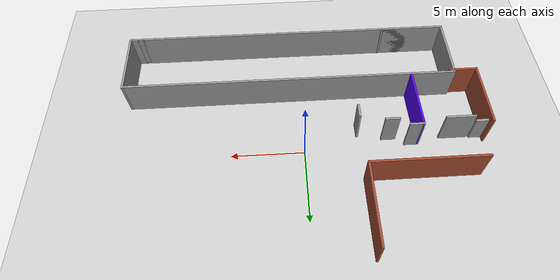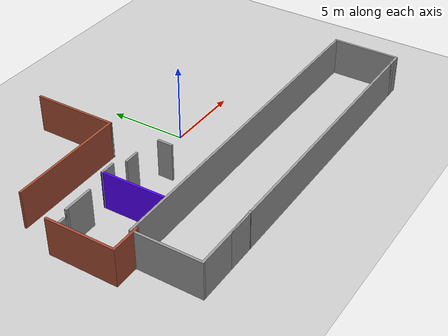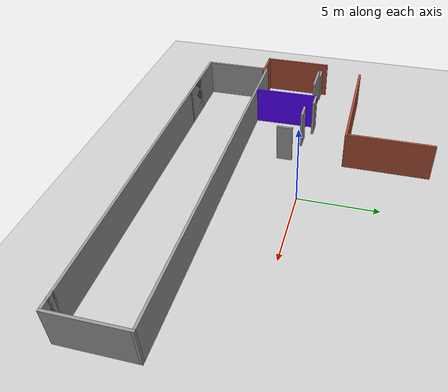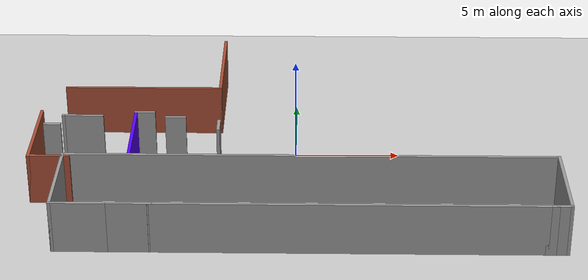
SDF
<sdf version="1.6">
 <world name="default">
  <model name="ground_plane">
   <static>1</static>
   <link name="link">
    <collision name="collision">
     <geometry><plane><normal>0 0 1</normal><size>100 100</size></plane></geometry>
     <surface>
      <contact><collide_bitmask>65535</collide_bitmask></contact>
      <friction><ode><mu>100</mu><mu2>50</mu2></ode></friction>
     </surface>
    </collision>
    <visual name="visual">
     <cast_shadows>0</cast_shadows>
     <geometry><plane><normal>0 0 1</normal><size>100 100</size></plane></geometry>
     <material>
      <script><uri>file://media/materials/scripts/gazebo.material</uri><name>Gazebo/Grey</name></script>
     </material>
    </visual>
   </link>
  </model>
  <model name="homeOffice">
   <link name="Door_3">
    <pose>-13.5001 -2.06196 0 0 -0 0</pose>
    <visual name="Door_3_Visual">
     <pose>0 0 1 0 -0 0</pose>
     <geometry><box><size>0.9 0.17 2</size></box></geometry>
     <material>
      <script><uri>file://media/materials/scripts/gazebo.material</uri><name>Gazebo/Grey</name></script>
      <shader type="pixel"/>
      <ambient>0.3 0.3 0.3 1</ambient>
      <diffuse>0.7 0.7 0.7 1</diffuse>
      <specular>0.01 0.01 0.01 1</specular>
      <emissive>0 0 0 1</emissive>
     </material>
    </visual>
    <collision name="Door_3_Collision">
     <pose>0 0 1 0 -0 0</pose>
     <geometry><box><size>0.9 0.17 2</size></box></geometry>
     <surface>
      <friction>
       <ode><mu>1</mu><mu2>1</mu2><fdir1>0 0 0</fdir1><slip1>0</slip1><slip2>0</slip2></ode>
       <torsional>
        <coefficient>1</coefficient>
        <patch_radius>0</patch_radius>
        <surface_radius>0</surface_radius>
        <use_patch_radius>1</use_patch_radius>
        <ode><slip>0</slip></ode>
       </torsional>
      </friction>
      <bounce><restitution_coefficient>0</restitution_coefficient><threshold>1e+06</threshold></bounce>
      <contact>
       <collide_without_contact>0</collide_without_contact>
       <collide_without_contact_bitmask>1</collide_without_contact_bitmask>
       <collide_bitmask>1</collide_bitmask>
       <ode>
        <soft_cfm>0</soft_cfm>
        <soft_erp>0.2</soft_erp>
        <kp>1e+13</kp>
        <kd>1</kd>
        <max_vel>0.01</max_vel>
        <min_depth>0</min_depth>
       </ode>
       <bullet>
        <split_impulse>1</split_impulse>
        <split_impulse_penetration_threshold>-0.01</split_impulse_penetration_threshold>
        <soft_cfm>0</soft_cfm>
        <soft_erp>0.2</soft_erp>
        <kp>1e+13</kp>
        <kd>1</kd>
       </bullet>
      </contact>
     </surface>
    </collision>
   </link>
   <link name="Wall_11">
    <pose>-5.36279 -2.9996 0 0 0 -1.5708</pose>
    <visual name="Wall_11_Visual">
     <pose>0 0 1.25 0 -0 0</pose>
     <geometry><box><size>1 0.15 2.5</size></box></geometry>
     <material>
      <script><uri>file://media/materials/scripts/gazebo.material</uri><name>Gazebo/Grey</name></script>
      <ambient>1 1 1 1</ambient>
      <shader type="pixel"/>
      <diffuse>0.7 0.7 0.7 1</diffuse>
      <specular>0.01 0.01 0.01 1</specular>
      <emissive>0 0 0 1</emissive>
     </material>
     <meta><layer>0</layer></meta>
    </visual>
    <collision name="Wall_11_Collision">
     <pose>0 0 1.25 0 -0 0</pose>
     <geometry><box><size>1 0.15 2.5</size></box></geometry>
     <surface>
      <friction>
       <ode><mu>1</mu><mu2>1</mu2><fdir1>0 0 0</fdir1><slip1>0</slip1><slip2>0</slip2></ode>
       <torsional>
        <coefficient>1</coefficient>
        <patch_radius>0</patch_radius>
        <surface_radius>0</surface_radius>
        <use_patch_radius>1</use_patch_radius>
        <ode><slip>0</slip></ode>
       </torsional>
      </friction>
      <bounce><restitution_coefficient>0</restitution_coefficient><threshold>1e+06</threshold></bounce>
      <contact>
       <collide_without_contact>0</collide_without_contact>
       <collide_without_contact_bitmask>1</collide_without_contact_bitmask>
       <collide_bitmask>1</collide_bitmask>
       <ode>
        <soft_cfm>0</soft_cfm>
        <soft_erp>0.2</soft_erp>
        <kp>1e+13</kp>
        <kd>1</kd>
        <max_vel>0.01</max_vel>
        <min_depth>0</min_depth>
       </ode>
       <bullet>
        <split_impulse>1</split_impulse>
        <split_impulse_penetration_threshold>-0.01</split_impulse_penetration_threshold>
        <soft_cfm>0</soft_cfm>
        <soft_erp>0.2</soft_erp>
        <kp>1e+13</kp>
        <kd>1</kd>
       </bullet>
      </contact>
     </surface>
    </collision>
   </link>
   <link name="Wall_15">
    <pose>-9.38779 -3.7496 0 0 -0 1.58314</pose>
    <visual name="Wall_15_Visual">
     <pose>0 0 1.25 0 -0 0</pose>
     <geometry><box><size>4.20031 0.15 2.5</size></box></geometry>
     <material>
      <script><uri>file://media/materials/scripts/gazebo.material</uri><name>Gazebo/Grey</name></script>
      <ambient>0.333333 0 1 1</ambient>
      <shader type="pixel"/>
      <diffuse>0.7 0.7 0.7 1</diffuse>
      <specular>0.01 0.01 0.01 1</specular>
      <emissive>0 0 0 1</emissive>
     </material>
     <meta><layer>0</layer></meta>
    </visual>
    <collision name="Wall_15_Collision">
     <pose>0 0 1.25 0 -0 0</pose>
     <geometry><box><size>4.20031 0.15 2.5</size></box></geometry>
     <surface>
      <friction>
       <ode><mu>1</mu><mu2>1</mu2><fdir1>0 0 0</fdir1><slip1>0</slip1><slip2>0</slip2></ode>
       <torsional>
        <coefficient>1</coefficient>
        <patch_radius>0</patch_radius>
        <surface_radius>0</surface_radius>
        <use_patch_radius>1</use_patch_radius>
        <ode><slip>0</slip></ode>
       </torsional>
      </friction>
      <bounce><restitution_coefficient>0</restitution_coefficient><threshold>1e+06</threshold></bounce>
      <contact>
       <collide_without_contact>0</collide_without_contact>
       <collide_without_contact_bitmask>1</collide_without_contact_bitmask>
       <collide_bitmask>1</collide_bitmask>
       <ode>
        <soft_cfm>0</soft_cfm>
        <soft_erp>0.2</soft_erp>
        <kp>1e+13</kp>
        <kd>1</kd>
        <max_vel>0.01</max_vel>
        <min_depth>0</min_depth>
       </ode>
       <bullet>
        <split_impulse>1</split_impulse>
        <split_impulse_penetration_threshold>-0.01</split_impulse_penetration_threshold>
        <soft_cfm>0</soft_cfm>
        <soft_erp>0.2</soft_erp>
        <kp>1e+13</kp>
        <kd>1</kd>
       </bullet>
      </contact>
     </surface>
    </collision>
   </link>
   <link name="Wall_16">
    <pose>-9.41279 -1.7246 0 0 -0 0</pose>
    <visual name="Wall_16_Visual">
     <pose>0 0 1.25 0 -0 0</pose>
     <geometry><box><size>0.15 0.15 2.5</size></box></geometry>
     <material>
      <script><uri>file://media/materials/scripts/gazebo.material</uri><name>Gazebo/Grey</name></script>
      <ambient>1 1 1 1</ambient>
      <shader type="pixel"/>
      <diffuse>0.7 0.7 0.7 1</diffuse>
      <specular>0.01 0.01 0.01 1</specular>
      <emissive>0 0 0 1</emissive>
     </material>
     <meta><layer>0</layer></meta>
    </visual>
    <collision name="Wall_16_Collision">
     <pose>0 0 1.25 0 -0 0</pose>
     <geometry><box><size>0.15 0.15 2.5</size></box></geometry>
     <surface>
      <friction>
       <ode><mu>1</mu><mu2>1</mu2><fdir1>0 0 0</fdir1><slip1>0</slip1><slip2>0</slip2></ode>
       <torsional>
        <coefficient>1</coefficient>
        <patch_radius>0</patch_radius>
        <surface_radius>0</surface_radius>
        <use_patch_radius>1</use_patch_radius>
        <ode><slip>0</slip></ode>
       </torsional>
      </friction>
      <bounce><restitution_coefficient>0</restitution_coefficient><threshold>1e+06</threshold></bounce>
      <contact>
       <collide_without_contact>0</collide_without_contact>
       <collide_without_contact_bitmask>1</collide_without_contact_bitmask>
       <collide_bitmask>1</collide_bitmask>
       <ode>
        <soft_cfm>0</soft_cfm>
        <soft_erp>0.2</soft_erp>
        <kp>1e+13</kp>
        <kd>1</kd>
        <max_vel>0.01</max_vel>
        <min_depth>0</min_depth>
       </ode>
       <bullet>
        <split_impulse>1</split_impulse>
        <split_impulse_penetration_threshold>-0.01</split_impulse_penetration_threshold>
        <soft_cfm>0</soft_cfm>
        <soft_erp>0.2</soft_erp>
        <kp>1e+13</kp>
        <kd>1</kd>
       </bullet>
      </contact>
     </surface>
    </collision>
   </link>
   <link name="Wall_27">
    <pose>-7.46779 -2.2246 0 0 -0 3.14159</pose>
    <visual name="Wall_27_Visual">
     <pose>0 0 1.25 0 -0 0</pose>
     <geometry><box><size>1 0.15 2.5</size></box></geometry>
     <material>
      <script><uri>file://media/materials/scripts/gazebo.material</uri><name>Gazebo/Grey</name></script>
      <ambient>1 1 1 1</ambient>
      <shader type="pixel"/>
      <diffuse>0.7 0.7 0.7 1</diffuse>
      <specular>0.01 0.01 0.01 1</specular>
      <emissive>0 0 0 1</emissive>
     </material>
     <meta><layer>0</layer></meta>
    </visual>
    <collision name="Wall_27_Collision">
     <pose>0 0 1.25 0 -0 0</pose>
     <geometry><box><size>1 0.15 2.5</size></box></geometry>
     <surface>
      <friction>
       <ode><mu>1</mu><mu2>1</mu2><fdir1>0 0 0</fdir1><slip1>0</slip1><slip2>0</slip2></ode>
       <torsional>
        <coefficient>1</coefficient>
        <patch_radius>0</patch_radius>
        <surface_radius>0</surface_radius>
        <use_patch_radius>1</use_patch_radius>
        <ode><slip>0</slip></ode>
       </torsional>
      </friction>
      <bounce><restitution_coefficient>0</restitution_coefficient><threshold>1e+06</threshold></bounce>
      <contact>
       <collide_without_contact>0</collide_without_contact>
       <collide_without_contact_bitmask>1</collide_without_contact_bitmask>
       <collide_bitmask>1</collide_bitmask>
       <ode>
        <soft_cfm>0</soft_cfm>
        <soft_erp>0.2</soft_erp>
        <kp>1e+13</kp>
        <kd>1</kd>
        <max_vel>0.01</max_vel>
        <min_depth>0</min_depth>
       </ode>
       <bullet>
        <split_impulse>1</split_impulse>
        <split_impulse_penetration_threshold>-0.01</split_impulse_penetration_threshold>
        <soft_cfm>0</soft_cfm>
        <soft_erp>0.2</soft_erp>
        <kp>1e+13</kp>
        <kd>1</kd>
       </bullet>
      </contact>
     </surface>
    </collision>
   </link>
   <link name="Wall_3">
    <pose>-8.98779 -1.7246 0 0 -0 0</pose>
    <visual name="Wall_3_Visual">
     <pose>0 0 1.25 0 -0 0</pose>
     <geometry><box><size>1 0.15 2.5</size></box></geometry>
     <material>
      <script><uri>file://media/materials/scripts/gazebo.material</uri><name>Gazebo/Grey</name></script>
      <ambient>1 1 1 1</ambient>
      <shader type="pixel"/>
      <diffuse>0.7 0.7 0.7 1</diffuse>
      <specular>0.01 0.01 0.01 1</specular>
      <emissive>0 0 0 1</emissive>
     </material>
     <meta><layer>0</layer></meta>
    </visual>
    <collision name="Wall_3_Collision">
     <pose>0 0 1.25 0 -0 0</pose>
     <geometry><box><size>1 0.15 2.5</size></box></geometry>
     <surface>
      <friction>
       <ode><mu>1</mu><mu2>1</mu2><fdir1>0 0 0</fdir1><slip1>0</slip1><slip2>0</slip2></ode>
       <torsional>
        <coefficient>1</coefficient>
        <patch_radius>0</patch_radius>
        <surface_radius>0</surface_radius>
        <use_patch_radius>1</use_patch_radius>
        <ode><slip>0</slip></ode>
       </torsional>
      </friction>
      <bounce><restitution_coefficient>0</restitution_coefficient><threshold>1e+06</threshold></bounce>
      <contact>
       <collide_without_contact>0</collide_without_contact>
       <collide_without_contact_bitmask>1</collide_without_contact_bitmask>
       <collide_bitmask>1</collide_bitmask>
       <ode>
        <soft_cfm>0</soft_cfm>
        <soft_erp>0.2</soft_erp>
        <kp>1e+13</kp>
        <kd>1</kd>
        <max_vel>0.01</max_vel>
        <min_depth>0</min_depth>
       </ode>
       <bullet>
        <split_impulse>1</split_impulse>
        <split_impulse_penetration_threshold>-0.01</split_impulse_penetration_threshold>
        <soft_cfm>0</soft_cfm>
        <soft_erp>0.2</soft_erp>
        <kp>1e+13</kp>
        <kd>1</kd>
       </bullet>
      </contact>
     </surface>
    </collision>
   </link>
   <link name="Wall_51">
    <pose>-13.9728 -3.8896 0 0 0 -1.5708</pose>
    <visual name="Wall_51_Visual">
     <pose>0 0 1.25 0 -0 0</pose>
     <geometry><box><size>4.5 0.15 2.5</size></box></geometry>
     <material>
      <script><uri>file://media/materials/scripts/gazebo.material</uri><name>Gazebo/Bricks</name></script>
      <ambient>1 1 1 1</ambient>
      <shader type="pixel"/>
      <diffuse>1 1 1 1</diffuse>
      <specular>0.2 0.2 0.2 1</specular>
      <emissive>0 0 0 1</emissive>
     </material>
     <meta><layer>0</layer></meta>
    </visual>
    <collision name="Wall_51_Collision">
     <pose>0 0 1.25 0 -0 0</pose>
     <geometry><box><size>4.5 0.15 2.5</size></box></geometry>
     <surface>
      <friction>
       <ode><mu>1</mu><mu2>1</mu2><fdir1>0 0 0</fdir1><slip1>0</slip1><slip2>0</slip2></ode>
       <torsional>
        <coefficient>1</coefficient>
        <patch_radius>0</patch_radius>
        <surface_radius>0</surface_radius>
        <use_patch_radius>1</use_patch_radius>
        <ode><slip>0</slip></ode>
       </torsional>
      </friction>
      <bounce><restitution_coefficient>0</restitution_coefficient><threshold>1e+06</threshold></bounce>
      <contact>
       <collide_without_contact>0</collide_without_contact>
       <collide_without_contact_bitmask>1</collide_without_contact_bitmask>
       <collide_bitmask>1</collide_bitmask>
       <ode>
        <soft_cfm>0</soft_cfm>
        <soft_erp>0.2</soft_erp>
        <kp>1e+13</kp>
        <kd>1</kd>
        <max_vel>0.01</max_vel>
        <min_depth>0</min_depth>
       </ode>
       <bullet>
        <split_impulse>1</split_impulse>
        <split_impulse_penetration_threshold>-0.01</split_impulse_penetration_threshold>
        <soft_cfm>0</soft_cfm>
        <soft_erp>0.2</soft_erp>
        <kp>1e+13</kp>
        <kd>1</kd>
       </bullet>
      </contact>
     </surface>
    </collision>
   </link>
   <link name="Wall_52">
    <pose>-13.0478 -6.0646 0 0 -0 0</pose>
    <visual name="Wall_52_Visual">
     <pose>0 0 1.25 0 -0 0</pose>
     <geometry><box><size>2 0.15 2.5</size></box></geometry>
     <material>
      <script><uri>file://media/materials/scripts/gazebo.material</uri><name>Gazebo/Bricks</name></script>
      <ambient>1 1 1 1</ambient>
      <shader type="pixel"/>
      <diffuse>1 1 1 1</diffuse>
      <specular>0.2 0.2 0.2 1</specular>
      <emissive>0 0 0 1</emissive>
     </material>
     <meta><layer>0</layer></meta>
    </visual>
    <collision name="Wall_52_Collision">
     <pose>0 0 1.25 0 -0 0</pose>
     <geometry><box><size>2 0.15 2.5</size></box></geometry>
     <surface>
      <friction>
       <ode><mu>1</mu><mu2>1</mu2><fdir1>0 0 0</fdir1><slip1>0</slip1><slip2>0</slip2></ode>
       <torsional>
        <coefficient>1</coefficient>
        <patch_radius>0</patch_radius>
        <surface_radius>0</surface_radius>
        <use_patch_radius>1</use_patch_radius>
        <ode><slip>0</slip></ode>
       </torsional>
      </friction>
      <bounce><restitution_coefficient>0</restitution_coefficient><threshold>1e+06</threshold></bounce>
      <contact>
       <collide_without_contact>0</collide_without_contact>
       <collide_without_contact_bitmask>1</collide_without_contact_bitmask>
       <collide_bitmask>1</collide_bitmask>
       <ode>
        <soft_cfm>0</soft_cfm>
        <soft_erp>0.2</soft_erp>
        <kp>1e+13</kp>
        <kd>1</kd>
        <max_vel>0.01</max_vel>
        <min_depth>0</min_depth>
       </ode>
       <bullet>
        <split_impulse>1</split_impulse>
        <split_impulse_penetration_threshold>-0.01</split_impulse_penetration_threshold>
        <soft_cfm>0</soft_cfm>
        <soft_erp>0.2</soft_erp>
        <kp>1e+13</kp>
        <kd>1</kd>
       </bullet>
      </contact>
     </surface>
    </collision>
   </link>
   <link name="Wall_56">
    <pose>-11.9478 -2.1146 0 0 -0 3.14159</pose>
    <visual name="Wall_56_Visual">
     <pose>0 0 1.25 0 -0 0</pose>
     <geometry><box><size>2 0.15 2.5</size></box></geometry>
     <material>
      <script><uri>file://media/materials/scripts/gazebo.material</uri><name>Gazebo/Grey</name></script>
      <ambient>1 1 1 1</ambient>
      <shader type="pixel"/>
      <diffuse>0.7 0.7 0.7 1</diffuse>
      <specular>0.01 0.01 0.01 1</specular>
      <emissive>0 0 0 1</emissive>
     </material>
     <meta><layer>0</layer></meta>
    </visual>
    <collision name="Wall_56_Collision">
     <pose>0 0 1.25 0 -0 0</pose>
     <geometry><box><size>2 0.15 2.5</size></box></geometry>
     <surface>
      <friction>
       <ode><mu>1</mu><mu2>1</mu2><fdir1>0 0 0</fdir1><slip1>0</slip1><slip2>0</slip2></ode>
       <torsional>
        <coefficient>1</coefficient>
        <patch_radius>0</patch_radius>
        <surface_radius>0</surface_radius>
        <use_patch_radius>1</use_patch_radius>
        <ode><slip>0</slip></ode>
       </torsional>
      </friction>
      <bounce><restitution_coefficient>0</restitution_coefficient><threshold>1e+06</threshold></bounce>
      <contact>
       <collide_without_contact>0</collide_without_contact>
       <collide_without_contact_bitmask>1</collide_without_contact_bitmask>
       <collide_bitmask>1</collide_bitmask>
       <ode>
        <soft_cfm>0</soft_cfm>
        <soft_erp>0.2</soft_erp>
        <kp>1e+13</kp>
        <kd>1</kd>
        <max_vel>0.01</max_vel>
        <min_depth>0</min_depth>
       </ode>
       <bullet>
        <split_impulse>1</split_impulse>
        <split_impulse_penetration_threshold>-0.01</split_impulse_penetration_threshold>
        <soft_cfm>0</soft_cfm>
        <soft_erp>0.2</soft_erp>
        <kp>1e+13</kp>
        <kd>1</kd>
       </bullet>
      </contact>
     </surface>
    </collision>
   </link>
   <link name="Wall_57">
    <pose>-12.8728 -2.1146 0 0 -0 0</pose>
    <visual name="Wall_57_Visual">
     <pose>0 0 1.25 0 -0 0</pose>
     <geometry><box><size>0.15 0.15 2.5</size></box></geometry>
     <material>
      <script><uri>file://media/materials/scripts/gazebo.material</uri><name>Gazebo/Grey</name></script>
      <ambient>1 1 1 1</ambient>
      <shader type="pixel"/>
      <diffuse>0.7 0.7 0.7 1</diffuse>
      <specular>0.01 0.01 0.01 1</specular>
      <emissive>0 0 0 1</emissive>
     </material>
     <meta><layer>0</layer></meta>
    </visual>
    <collision name="Wall_57_Collision">
     <pose>0 0 1.25 0 -0 0</pose>
     <geometry><box><size>0.15 0.15 2.5</size></box></geometry>
     <surface>
      <friction>
       <ode><mu>1</mu><mu2>1</mu2><fdir1>0 0 0</fdir1><slip1>0</slip1><slip2>0</slip2></ode>
       <torsional>
        <coefficient>1</coefficient>
        <patch_radius>0</patch_radius>
        <surface_radius>0</surface_radius>
        <use_patch_radius>1</use_patch_radius>
        <ode><slip>0</slip></ode>
       </torsional>
      </friction>
      <bounce><restitution_coefficient>0</restitution_coefficient><threshold>1e+06</threshold></bounce>
      <contact>
       <collide_without_contact>0</collide_without_contact>
       <collide_without_contact_bitmask>1</collide_without_contact_bitmask>
       <collide_bitmask>1</collide_bitmask>
       <ode>
        <soft_cfm>0</soft_cfm>
        <soft_erp>0.2</soft_erp>
        <kp>1e+13</kp>
        <kd>1</kd>
        <max_vel>0.01</max_vel>
        <min_depth>0</min_depth>
       </ode>
       <bullet>
        <split_impulse>1</split_impulse>
        <split_impulse_penetration_threshold>-0.01</split_impulse_penetration_threshold>
        <soft_cfm>0</soft_cfm>
        <soft_erp>0.2</soft_erp>
        <kp>1e+13</kp>
        <kd>1</kd>
       </bullet>
      </contact>
     </surface>
    </collision>
   </link>
   <link name="Wall_61">
    <pose>-9.27721 0.8446 0 0 -0 0</pose>
    <visual name="Wall_61_Visual">
     <pose>0 0 1.25 0 -0 0</pose>
     <geometry><box><size>7.75 0.15 2.5</size></box></geometry>
     <material>
      <script><uri>file://media/materials/scripts/gazebo.material</uri><name>Gazebo/Bricks</name></script>
      <ambient>1 1 1 1</ambient>
      <shader type="pixel"/>
      <diffuse>1 1 1 1</diffuse>
      <specular>0.2 0.2 0.2 1</specular>
      <emissive>0 0 0 1</emissive>
     </material>
     <meta><layer>0</layer></meta>
    </visual>
    <collision name="Wall_61_Collision">
     <pose>0 0 1.25 0 -0 0</pose>
     <geometry><box><size>7.75 0.15 2.5</size></box></geometry>
     <surface>
      <friction>
       <ode><mu>1</mu><mu2>1</mu2><fdir1>0 0 0</fdir1><slip1>0</slip1><slip2>0</slip2></ode>
       <torsional>
        <coefficient>1</coefficient>
        <patch_radius>0</patch_radius>
        <surface_radius>0</surface_radius>
        <use_patch_radius>1</use_patch_radius>
        <ode><slip>0</slip></ode>
       </torsional>
      </friction>
      <bounce><restitution_coefficient>0</restitution_coefficient><threshold>1e+06</threshold></bounce>
      <contact>
       <collide_without_contact>0</collide_without_contact>
       <collide_without_contact_bitmask>1</collide_without_contact_bitmask>
       <collide_bitmask>1</collide_bitmask>
       <ode>
        <soft_cfm>0</soft_cfm>
        <soft_erp>0.2</soft_erp>
        <kp>1e+13</kp>
        <kd>1</kd>
        <max_vel>0.01</max_vel>
        <min_depth>0</min_depth>
       </ode>
       <bullet>
        <split_impulse>1</split_impulse>
        <split_impulse_penetration_threshold>-0.01</split_impulse_penetration_threshold>
        <soft_cfm>0</soft_cfm>
        <soft_erp>0.2</soft_erp>
        <kp>1e+13</kp>
        <kd>1</kd>
       </bullet>
      </contact>
     </surface>
    </collision>
   </link>
   <link name="Wall_62">
    <pose>-5.47721 0.8446 0 0 -0 0</pose>
    <visual name="Wall_62_Visual">
     <pose>0 0 1.25 0 -0 0</pose>
     <geometry><box><size>0.15 0.15 2.5</size></box></geometry>
     <material>
      <script><uri>file://media/materials/scripts/gazebo.material</uri><name>Gazebo/Grey</name></script>
      <ambient>1 1 1 1</ambient>
      <shader type="pixel"/>
      <diffuse>0.7 0.7 0.7 1</diffuse>
      <specular>0.01 0.01 0.01 1</specular>
      <emissive>0 0 0 1</emissive>
     </material>
     <meta><layer>0</layer></meta>
    </visual>
    <collision name="Wall_62_Collision">
     <pose>0 0 1.25 0 -0 0</pose>
     <geometry><box><size>0.15 0.15 2.5</size></box></geometry>
     <surface>
      <friction>
       <ode><mu>1</mu><mu2>1</mu2><fdir1>0 0 0</fdir1><slip1>0</slip1><slip2>0</slip2></ode>
       <torsional>
        <coefficient>1</coefficient>
        <patch_radius>0</patch_radius>
        <surface_radius>0</surface_radius>
        <use_patch_radius>1</use_patch_radius>
        <ode><slip>0</slip></ode>
       </torsional>
      </friction>
      <bounce><restitution_coefficient>0</restitution_coefficient><threshold>1e+06</threshold></bounce>
      <contact>
       <collide_without_contact>0</collide_without_contact>
       <collide_without_contact_bitmask>1</collide_without_contact_bitmask>
       <collide_bitmask>1</collide_bitmask>
       <ode>
        <soft_cfm>0</soft_cfm>
        <soft_erp>0.2</soft_erp>
        <kp>1e+13</kp>
        <kd>1</kd>
        <max_vel>0.01</max_vel>
        <min_depth>0</min_depth>
       </ode>
       <bullet>
        <split_impulse>1</split_impulse>
        <split_impulse_penetration_threshold>-0.01</split_impulse_penetration_threshold>
        <soft_cfm>0</soft_cfm>
        <soft_erp>0.2</soft_erp>
        <kp>1e+13</kp>
        <kd>1</kd>
       </bullet>
      </contact>
     </surface>
    </collision>
   </link>
   <link name="Wall_64">
    <pose>-5.47721 3.5196 0 0 -0 1.5708</pose>
    <visual name="Wall_64_Visual">
     <pose>0 0 1.25 0 -0 0</pose>
     <geometry><box><size>5.5 0.15 2.5</size></box></geometry>
     <material>
      <script><uri>file://media/materials/scripts/gazebo.material</uri><name>Gazebo/Bricks</name></script>
      <ambient>1 1 1 1</ambient>
      <shader type="pixel"/>
      <diffuse>1 1 1 1</diffuse>
      <specular>0.2 0.2 0.2 1</specular>
      <emissive>0 0 0 1</emissive>
     </material>
     <meta><layer>0</layer></meta>
    </visual>
    <collision name="Wall_64_Collision">
     <pose>0 0 1.25 0 -0 0</pose>
     <geometry><box><size>5.5 0.15 2.5</size></box></geometry>
     <surface>
      <friction>
       <ode><mu>1</mu><mu2>1</mu2><fdir1>0 0 0</fdir1><slip1>0</slip1><slip2>0</slip2></ode>
       <torsional>
        <coefficient>1</coefficient>
        <patch_radius>0</patch_radius>
        <surface_radius>0</surface_radius>
        <use_patch_radius>1</use_patch_radius>
        <ode><slip>0</slip></ode>
       </torsional>
      </friction>
      <bounce><restitution_coefficient>0</restitution_coefficient><threshold>1e+06</threshold></bounce>
      <contact>
       <collide_without_contact>0</collide_without_contact>
       <collide_without_contact_bitmask>1</collide_without_contact_bitmask>
       <collide_bitmask>1</collide_bitmask>
       <ode>
        <soft_cfm>0</soft_cfm>
        <soft_erp>0.2</soft_erp>
        <kp>1e+13</kp>
        <kd>1</kd>
        <max_vel>0.01</max_vel>
        <min_depth>0</min_depth>
       </ode>
       <bullet>
        <split_impulse>1</split_impulse>
        <split_impulse_penetration_threshold>-0.01</split_impulse_penetration_threshold>
        <soft_cfm>0</soft_cfm>
        <soft_erp>0.2</soft_erp>
        <kp>1e+13</kp>
        <kd>1</kd>
       </bullet>
      </contact>
     </surface>
    </collision>
   </link>
   <static>1</static>
   <pose>1.7028 1.4546 0 0 -0 0</pose>
  </model>
  <model name="homeOffice.world">
   <pose>0.729 -6.62678 0 0 -0 0</pose>
   <link name="Wall_10">
    <collision name="Wall_10_Collision">
     <geometry><box><size>0.75 0.15 2.5</size></box></geometry>
     <pose>0 0 1.25 0 -0 0</pose>
    </collision>
    <visual name="Wall_10_Visual">
     <pose>0 0 1.25 0 -0 0</pose>
     <geometry><box><size>0.75 0.15 2.5</size></box></geometry>
     <material>
      <script><uri>file://media/materials/scripts/gazebo.material</uri><name>Gazebo/Grey</name></script>
      <ambient>1 1 1 1</ambient>
     </material>
     <meta><layer>0</layer></meta>
    </visual>
    <pose>11.125 -2.16657 0 0 -0 0</pose>
   </link>
   <link name="Wall_11">
    <collision name="Wall_11_Collision">
     <geometry><box><size>4.5 0.15 2.5</size></box></geometry>
     <pose>0 0 1.25 0 -0 0</pose>
    </collision>
    <visual name="Wall_11_Visual">
     <pose>0 0 1.25 0 -0 0</pose>
     <geometry><box><size>4.5 0.15 2.5</size></box></geometry>
     <material>
      <script><uri>file://media/materials/scripts/gazebo.material</uri><name>Gazebo/Grey</name></script>
      <ambient>1 1 1 1</ambient>
     </material>
     <meta><layer>0</layer></meta>
    </visual>
    <pose>11.425 0.008428 0 0 -0 1.5708</pose>
   </link>
   <link name="Wall_13">
    <collision name="Wall_13_Collision">
     <geometry><box><size>23 0.15 2.5</size></box></geometry>
     <pose>0 0 1.25 0 -0 0</pose>
    </collision>
    <visual name="Wall_13_Visual">
     <pose>0 0 1.25 0 -0 0</pose>
     <geometry><box><size>23 0.15 2.5</size></box></geometry>
     <material>
      <script><uri>file://media/materials/scripts/gazebo.material</uri><name>Gazebo/Grey</name></script>
      <ambient>1 1 1 1</ambient>
     </material>
     <meta><layer>0</layer></meta>
    </visual>
    <pose>0 2.18343 0 0 -0 3.14159</pose>
   </link>
   <link name="Wall_14">
    <collision name="Wall_14_Collision">
     <geometry><box><size>4.5 0.15 2.5</size></box></geometry>
     <pose>0 0 1.25 0 -0 0</pose>
    </collision>
    <visual name="Wall_14_Visual">
     <pose>0 0 1.25 0 -0 0</pose>
     <geometry><box><size>4.5 0.15 2.5</size></box></geometry>
     <material>
      <script><uri>file://media/materials/scripts/gazebo.material</uri><name>Gazebo/Grey</name></script>
      <ambient>1 1 1 1</ambient>
     </material>
     <meta><layer>0</layer></meta>
    </visual>
    <pose>-11.425 0.008428 0 0 0 -1.5708</pose>
   </link>
   <link name="Wall_15">
    <collision name="Wall_15_Collision">
     <geometry><box><size>4.5 0.15 2.5</size></box></geometry>
     <pose>0 0 1.25 0 -0 0</pose>
    </collision>
    <visual name="Wall_15_Visual">
     <pose>0 0 1.25 0 -0 0</pose>
     <geometry><box><size>4.5 0.15 2.5</size></box></geometry>
     <material>
      <script><uri>file://media/materials/scripts/gazebo.material</uri><name>Gazebo/Grey</name></script>
      <ambient>1 1 1 1</ambient>
     </material>
     <meta><layer>0</layer></meta>
    </visual>
    <pose>-9.25 -2.16657 0 0 -0 0</pose>
   </link>
   <link name="Wall_16">
    <collision name="Wall_16_Collision">
     <geometry><box><size>0.25 0.15 2.5</size></box></geometry>
     <pose>0 0 1.25 0 -0 0</pose>
    </collision>
    <visual name="Wall_16_Visual">
     <pose>0 0 1.25 0 -0 0</pose>
     <geometry><box><size>0.25 0.15 2.5</size></box></geometry>
     <material>
      <script><uri>file://media/materials/scripts/gazebo.material</uri><name>Gazebo/Grey</name></script>
      <ambient>1 1 1 1</ambient>
     </material>
     <meta><layer>0</layer></meta>
    </visual>
    <pose>-7.0267 -2.15363 0 0 -0 0.261799</pose>
   </link>
   <link name="Wall_8">
    <collision name="Wall_8_Collision">
     <geometry><box><size>19.5 0.15 2.5</size></box></geometry>
     <pose>0 0 1.25 0 -0 0</pose>
    </collision>
    <visual name="Wall_8_Visual">
     <pose>0 0 1.25 0 -0 0</pose>
     <geometry><box><size>19.5 0.15 2.5</size></box></geometry>
     <material>
      <script><uri>file://media/materials/scripts/gazebo.material</uri><name>Gazebo/Grey</name></script>
      <ambient>1 1 1 1</ambient>
     </material>
     <meta><layer>0</layer></meta>
    </visual>
    <pose>0.8 -2.16657 0 0 -0 0</pose>
   </link>
   <link name="Wall_9">
    <collision name="Wall_9_Collision">
     <geometry><box><size>0.5 0.15 2.5</size></box></geometry>
     <pose>0 0 1.25 0 -0 0</pose>
    </collision>
    <visual name="Wall_9_Visual">
     <pose>0 0 1.25 0 -0 0</pose>
     <geometry><box><size>0.5 0.15 2.5</size></box></geometry>
     <material>
      <script><uri>file://media/materials/scripts/gazebo.material</uri><name>Gazebo/Grey</name></script>
      <ambient>1 1 1 1</ambient>
     </material>
     <meta><layer>0</layer></meta>
    </visual>
    <pose>10.65 -2.16657 0 0 -0 0</pose>
   </link>
   <static>1</static>
  </model>
 </world>
</sdf>
